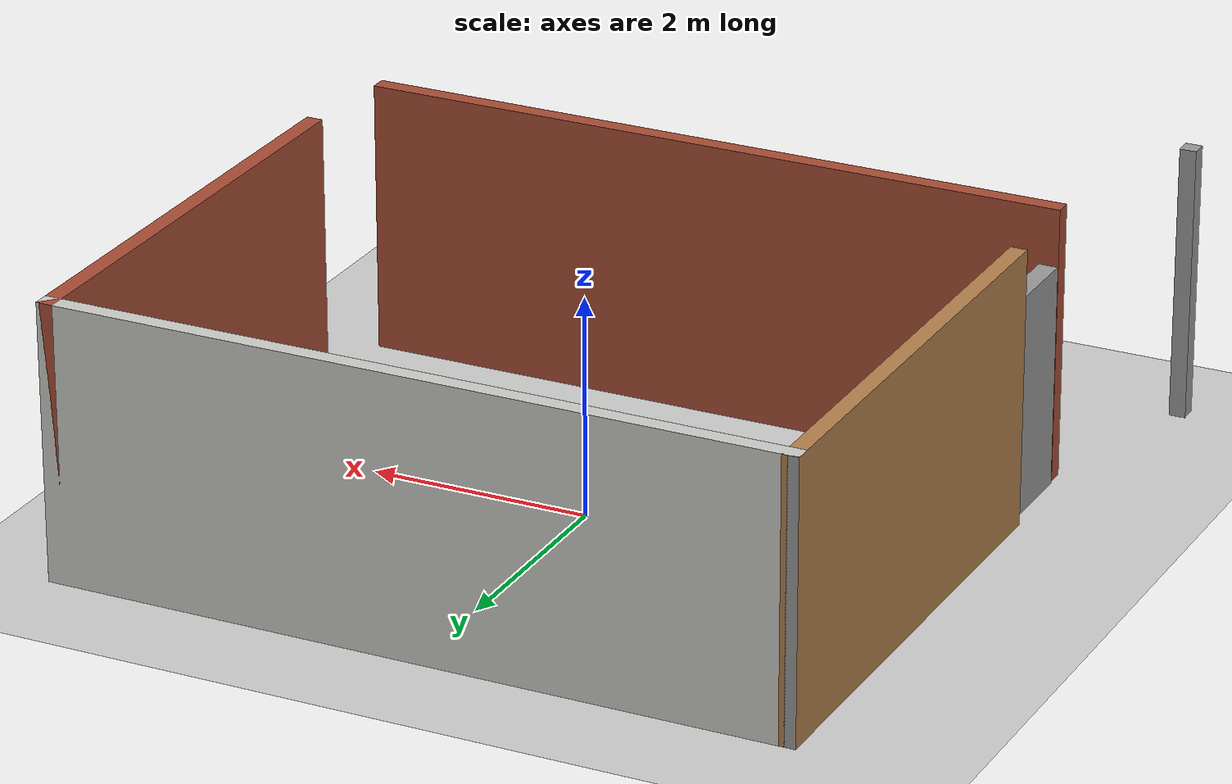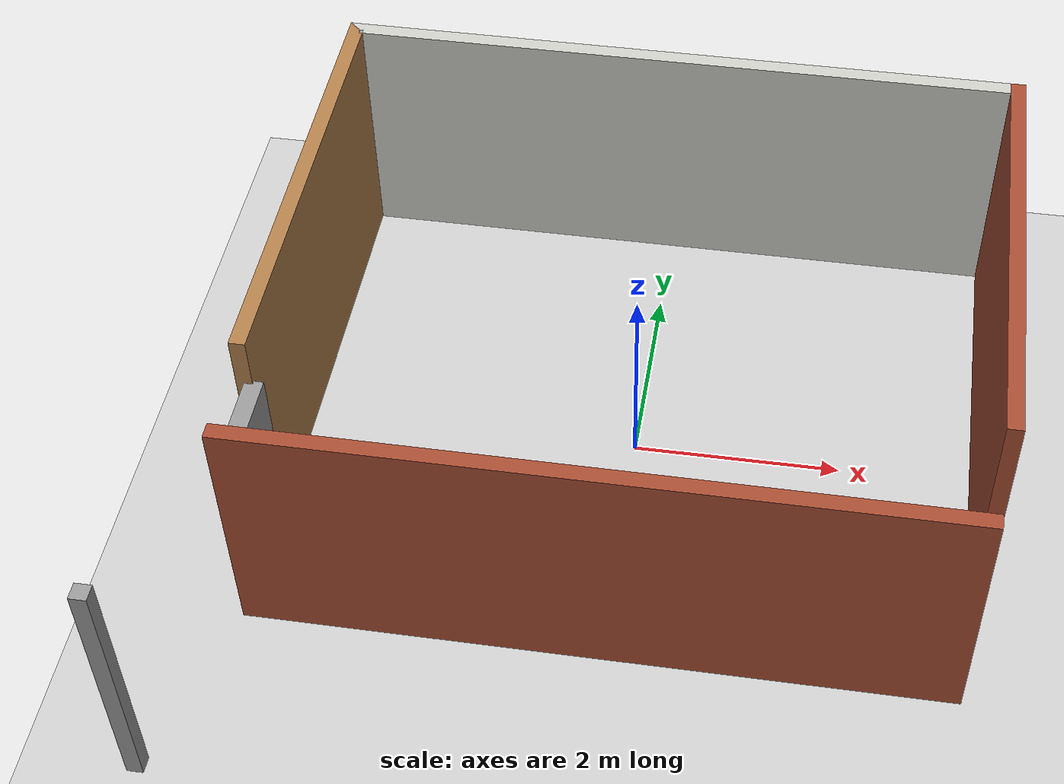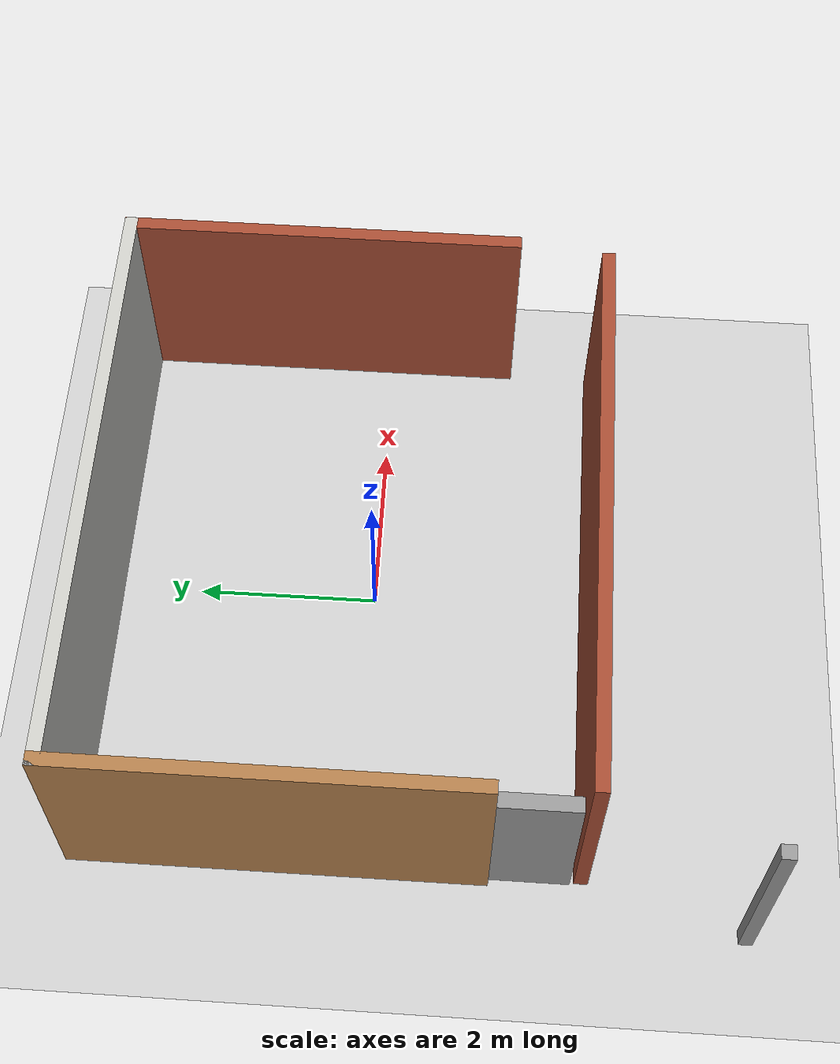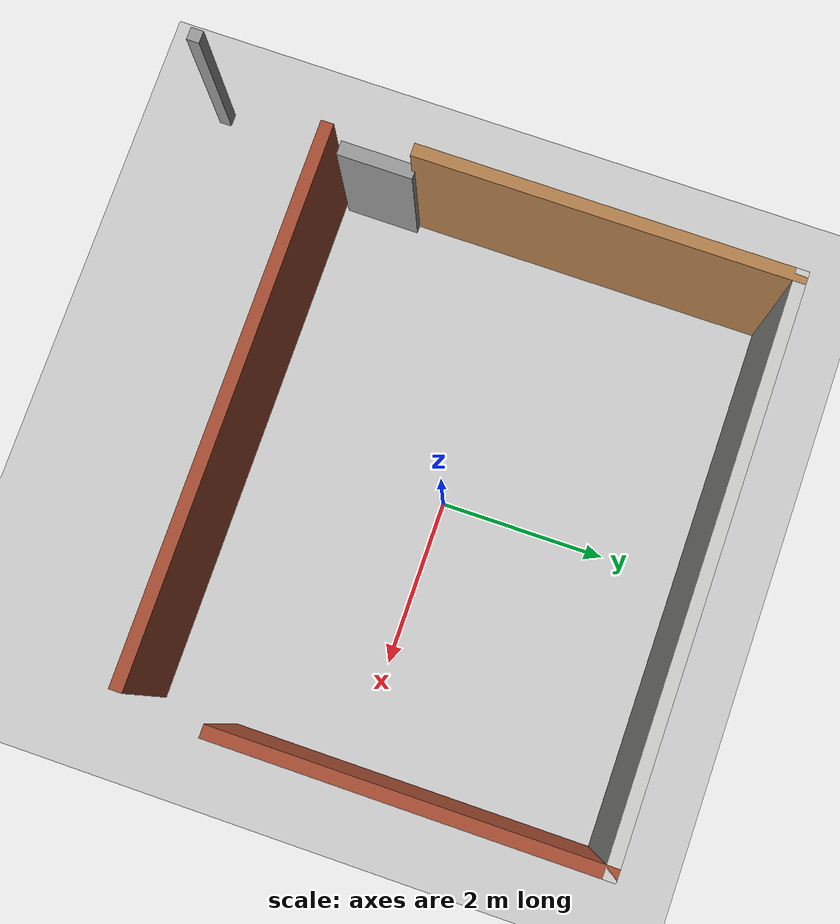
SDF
<sdf version="1.7">
 <world name="default">
  <light name="sun" type="directional">
   <pose>0 0 10 0 -0 0</pose>
   <diffuse>0.8 0.8 0.8 1</diffuse>
   <specular>0.2 0.2 0.2 1</specular>
   <attenuation>
    <range>1000</range>
    <constant>0.9</constant>
    <linear>0.01</linear>
    <quadratic>0.001</quadratic>
   </attenuation>
   <direction>-0.5 0.1 -0.9</direction>
   <spot><inner_angle>0</inner_angle><outer_angle>0</outer_angle><falloff>0</falloff></spot>
  </light>
  <model name="ground_plane">
   <static>1</static>
   <link name="link">
    <collision name="collision">
     <geometry><plane><normal>0 0 1</normal><size>100 100</size></plane></geometry>
     <surface>
      <contact><collide_bitmask>65535</collide_bitmask></contact>
      <friction><ode><mu>100</mu><mu2>50</mu2></ode></friction>
     </surface>
    </collision>
    <visual name="visual">
     <cast_shadows>0</cast_shadows>
     <geometry><plane><normal>0 0 1</normal><size>100 100</size></plane></geometry>
     <material>
      <script><uri>file://media/materials/scripts/gazebo.material</uri><name>Gazebo/Grey</name></script>
     </material>
    </visual>
   </link>
  </model>
  <gravity>0 0 -9.8</gravity>
  <magnetic_field>6e-06 2.3e-05 -4.2e-05</magnetic_field>
  <atmosphere type="adiabatic"/>
  <physics type="ode">
   <max_step_size>0.001</max_step_size>
   <real_time_factor>1</real_time_factor>
   <real_time_update_rate>1000</real_time_update_rate>
  </physics>
  <scene><ambient>0.4 0.4 0.4 1</ambient><background>0.7 0.7 0.7 1</background><shadows>1</shadows></scene>
  <audio><device>default</device></audio>
  <spherical_coordinates>
   <surface_model>EARTH_WGS84</surface_model>
   <latitude_deg>0</latitude_deg>
   <longitude_deg>0</longitude_deg>
   <elevation>0</elevation>
   <heading_deg>0</heading_deg>
  </spherical_coordinates>
  <model name="my_building">
   <pose>-0.202425 -0.584138 0 0 -0 0</pose>
   <link name="Door_0">
    <collision name="Door_0_Collision">
     <geometry><box><size>0.9 0.17 2</size></box></geometry>
     <pose>0 0 1 0 -0 0</pose>
    </collision>
    <visual name="Door_0_Visual">
     <pose>0 0 1 0 -0 0</pose>
     <geometry><box><size>0.9 0.17 2</size></box></geometry>
     <material>
      <script><uri>file://media/materials/scripts/gazebo.material</uri><name>Gazebo/Grey</name></script>
     </material>
    </visual>
    <pose>-2.98615 -1.27577 0 0 -0 1.56916</pose>
   </link>
   <link name="Wall_13">
    <collision name="Wall_13_Collision">
     <geometry><box><size>4.5 0.15 2.5</size></box></geometry>
     <pose>0 0 1.25 0 -0 0</pose>
    </collision>
    <visual name="Wall_13_Visual">
     <pose>0 0 1.25 0 -0 0</pose>
     <geometry><box><size>4.5 0.15 2.5</size></box></geometry>
     <material>
      <script><uri>file://media/materials/scripts/gazebo.material</uri><name>Gazebo/Wood</name></script>
      <ambient>1 1 1 1</ambient>
     </material>
     <meta><layer>0</layer></meta>
    </visual>
    <pose>-3.06635 1.38777 0 0 -0 1.5708</pose>
   </link>
   <link name="Wall_14">
    <collision name="Wall_14_Collision">
     <geometry><box><size>0.15 0.15 2.5</size></box></geometry>
     <pose>0 0 1.25 0 -0 0</pose>
    </collision>
    <visual name="Wall_14_Visual">
     <pose>0 0 1.25 0 -0 0</pose>
     <geometry><box><size>0.15 0.15 2.5</size></box></geometry>
     <material>
      <script><uri>file://media/materials/scripts/gazebo.material</uri><name>Gazebo/Grey</name></script>
      <ambient>1 1 1 1</ambient>
     </material>
     <meta><layer>0</layer></meta>
    </visual>
    <pose>-3.06635 3.56277 0 0 -0 0</pose>
   </link>
   <link name="Wall_15">
    <collision name="Wall_15_Collision">
     <geometry><box><size>6.75 0.15 2.5</size></box></geometry>
     <pose>0 0 1.25 0 -0 0</pose>
    </collision>
    <visual name="Wall_15_Visual">
     <pose>0 0 1.25 0 -0 0</pose>
     <geometry><box><size>6.75 0.15 2.5</size></box></geometry>
     <material>
      <script><uri>file://media/materials/scripts/gazebo.material</uri><name>Gazebo/CeilingTiled</name></script>
      <ambient>1 1 1 1</ambient>
     </material>
     <meta><layer>0</layer></meta>
    </visual>
    <pose>0.233646 3.56277 0 0 -0 0</pose>
   </link>
   <link name="Wall_16">
    <collision name="Wall_16_Collision">
     <geometry><box><size>4.5 0.15 2.5</size></box></geometry>
     <pose>0 0 1.25 0 -0 0</pose>
    </collision>
    <visual name="Wall_16_Visual">
     <pose>0 0 1.25 0 -0 0</pose>
     <geometry><box><size>4.5 0.15 2.5</size></box></geometry>
     <material>
      <script><uri>file://media/materials/scripts/gazebo.material</uri><name>Gazebo/Bricks</name></script>
      <ambient>1 1 1 1</ambient>
     </material>
     <meta><layer>0</layer></meta>
    </visual>
    <pose>3.53365 1.38777 0 0 -0 -1.5708</pose>
   </link>
   <link name="Wall_4">
    <collision name="Wall_4_Collision">
     <geometry><box><size>0.15 0.15 2.5</size></box></geometry>
     <pose>0 0 1.25 0 -0 0</pose>
    </collision>
    <visual name="Wall_4_Visual">
     <pose>0 0 1.25 0 -0 0</pose>
     <geometry><box><size>0.15 0.15 2.5</size></box></geometry>
     <material>
      <script><uri>file://media/materials/scripts/gazebo.material</uri><name>Gazebo/Grey</name></script>
      <ambient>1 1 1 1</ambient>
     </material>
     <meta><layer>0</layer></meta>
    </visual>
    <pose>-3.53365 -3.56277 0 0 -0 0</pose>
   </link>
   <link name="Wall_5">
    <collision name="Wall_5_Collision">
     <geometry><box><size>0.15 0.15 2.5</size></box></geometry>
     <pose>0 0 1.25 0 -0 0</pose>
    </collision>
    <visual name="Wall_5_Visual">
     <pose>0 0 1.25 0 -0 0</pose>
     <geometry><box><size>0.15 0.15 2.5</size></box></geometry>
     <material>
      <script><uri>file://media/materials/scripts/gazebo.material</uri><name>Gazebo/Grey</name></script>
      <ambient>1 1 1 1</ambient>
     </material>
     <meta><layer>0</layer></meta>
    </visual>
    <pose>-3.53365 -3.56277 0 0 -0 0</pose>
   </link>
   <link name="Wall_7">
    <collision name="Wall_7_Collision">
     <geometry><box><size>6.5 0.15 2.5</size></box></geometry>
     <pose>0 0 1.25 0 -0 0</pose>
    </collision>
    <visual name="Wall_7_Visual">
     <pose>0 0 1.25 0 -0 0</pose>
     <geometry><box><size>6.5 0.15 2.5</size></box></geometry>
     <material>
      <script><uri>file://media/materials/scripts/gazebo.material</uri><name>Gazebo/Bricks</name></script>
      <ambient>1 1 1 1</ambient>
     </material>
     <meta><layer>0</layer></meta>
    </visual>
    <pose>0.191353 -1.84277 0 0 -0 3.14159</pose>
   </link>
   <static>1</static>
  </model>
 </world>
</sdf>
